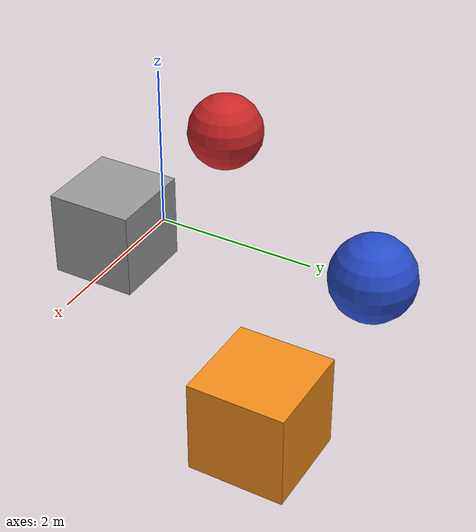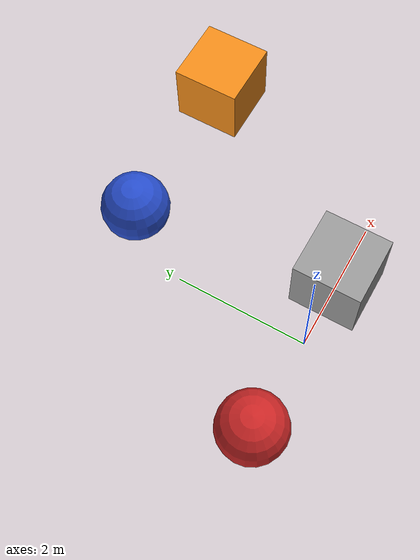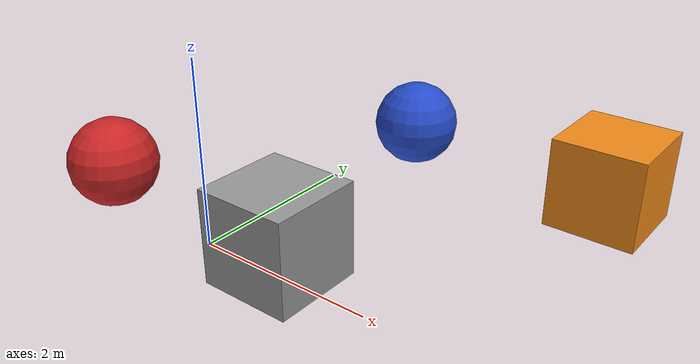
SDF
<?xml version="1.0" ?>
<sdf version="1.5">
  <world name="default">
    <physics type="ode">
      <gravity>0 0 0</gravity>
    </physics>
    <include>
      <uri>model://sun</uri>
    </include>
    <model name="multilink">
      <pose>0 0 0.5 0 0 0</pose>
      <link name="box_link">
        <pose>1 0 0 0 0 0</pose>
        <collision name="collision">
          <geometry>
            <box>
              <size>1 1 1</size>
            </box>
          </geometry>
        </collision>
        <visual name="visual">
          <geometry>
            <box>
              <size>1 1 1</size>
            </box>
          </geometry>
          <material>
            <script>
              <uri>file://media/materials/scripts/gazebo.material</uri>
              <name>Gazebo/Grey</name>
            </script>
          </material>
        </visual>
      </link>
      <link name="sphere_link">
        <pose>-1.5 0 0 0 0 1.57</pose>
        <collision name="collision">
          <geometry>
            <sphere>
              <radius>0.5</radius>
            </sphere>
          </geometry>
        </collision>
        <visual name="visual">
          <geometry>
            <sphere>
              <radius>0.5</radius>
            </sphere>
          </geometry>
          <material>
            <script>
              <uri>file://media/materials/scripts/gazebo.material</uri>
              <name>Gazebo/Red</name>
            </script>
          </material>
        </visual>
      </link>
    </model>
    <model name="nested_outer">
      <model name="nested_inner">
        <pose>2 0 0.5 0 0 0</pose>
        <link name="nested_box_link">
          <pose>1 3 0 0 0 0</pose>
          <collision name="collision">
            <geometry>
              <box>
                <size>1 1 1</size>
              </box>
            </geometry>
          </collision>
          <visual name="visual">
            <geometry>
              <box>
                <size>1 1 1</size>
              </box>
            </geometry>
            <material>
              <script>
                <uri>file://media/materials/scripts/gazebo.material</uri>
                <name>Gazebo/Orange</name>
              </script>
            </material>
          </visual>
        </link>
        <link name="nested_sphere_link">
          <pose>-1.5 3 0 0 0 1.57</pose>
          <collision name="collision">
            <geometry>
              <sphere>
                <radius>0.5</radius>
              </sphere>
            </geometry>
          </collision>
          <visual name="visual">
            <geometry>
              <sphere>
                <radius>0.5</radius>
              </sphere>
            </geometry>
            <material>
              <script>
                <uri>file://media/materials/scripts/gazebo.material</uri>
                <name>Gazebo/Blue</name>
              </script>
            </material>
          </visual>
        </link>
      </model>
    </model>
  </world>
</sdf>
